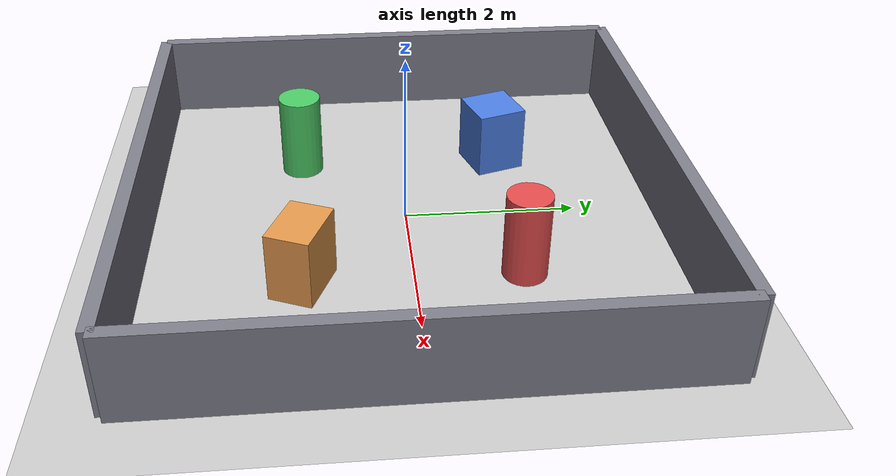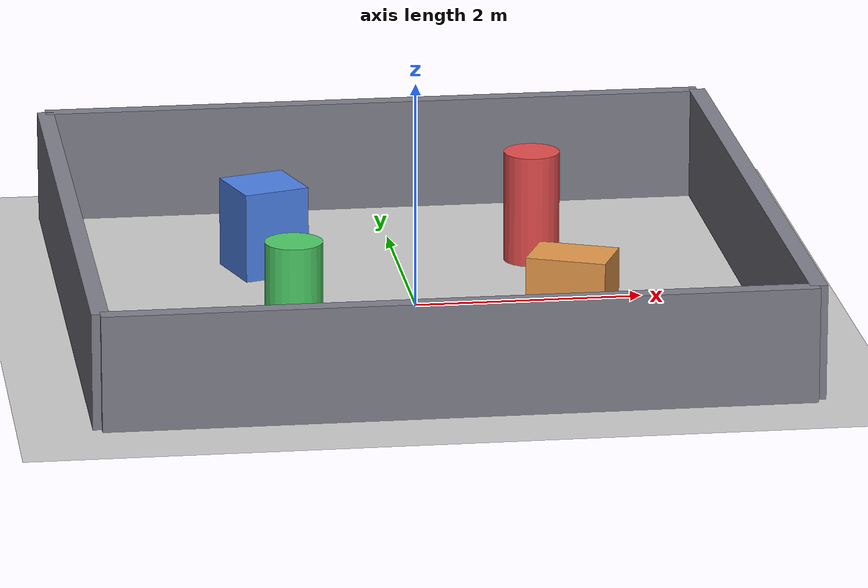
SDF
<?xml version="1.0" ?>
<sdf version="1.8">
  <world name="obstacles_world">

    <!-- Physics Configuration -->
    <physics name="1ms" type="ignored">
      <max_step_size>0.001</max_step_size>
      <real_time_factor>1.0</real_time_factor>
    </physics>

    <!-- Required Gazebo Sim Plugins -->
    <plugin
      filename="gz-sim-physics-system"
      name="gz::sim::systems::Physics">
    </plugin>
    <plugin
      filename="gz-sim-user-commands-system"
      name="gz::sim::systems::UserCommands">
    </plugin>
    <plugin
      filename="gz-sim-scene-broadcaster-system"
      name="gz::sim::systems::SceneBroadcaster">
    </plugin>
    <plugin
      filename="gz-sim-sensors-system"
      name="gz::sim::systems::Sensors">
      <render_engine>ogre2</render_engine>
    </plugin>

    <!-- Sunlight -->
    <light type="directional" name="sun">
      <cast_shadows>true</cast_shadows>
      <pose>0 0 10 0 0 0</pose>
      <diffuse>0.8 0.8 0.8 1</diffuse>
      <specular>0.2 0.2 0.2 1</specular>
      <attenuation>
        <range>1000</range>
        <constant>0.9</constant>
        <linear>0.01</linear>
        <quadratic>0.001</quadratic>
      </attenuation>
      <direction>-0.5 0.1 -0.9</direction>
    </light>

    <!-- Ground Plane -->
    <model name="ground_plane">
      <static>true</static>
      <link name="link">
        <collision name="collision">
          <geometry>
            <plane>
              <normal>0 0 1</normal>
              <size>100 100</size>
            </plane>
          </geometry>
        </collision>
        <visual name="visual">
          <geometry>
            <plane>
              <normal>0 0 1</normal>
              <size>100 100</size>
            </plane>
          </geometry>
          <material>
            <ambient>0.8 0.8 0.8 1</ambient>
            <diffuse>0.8 0.8 0.8 1</diffuse>
            <specular>0.8 0.8 0.8 1</specular>
          </material>
        </visual>
      </link>
    </model>

    <!-- Room Boundary Walls (6m x 6m Arena) -->
    <!-- North Wall -->
    <model name="wall_north">
      <static>true</static>
      <pose>0 3 0.5 0 0 0</pose>
      <link name="link">
        <collision name="collision"><geometry><box><size>6 0.15 1.0</size></box></geometry></collision>
        <visual name="visual"><geometry><box><size>6 0.15 1.0</size></box></geometry>
          <material><ambient>0.3 0.3 0.35 1</ambient><diffuse>0.5 0.5 0.55 1</diffuse></material>
        </visual>
      </link>
    </model>

    <!-- South Wall -->
    <model name="wall_south">
      <static>true</static>
      <pose>0 -3 0.5 0 0 0</pose>
      <link name="link">
        <collision name="collision"><geometry><box><size>6 0.15 1.0</size></box></geometry></collision>
        <visual name="visual"><geometry><box><size>6 0.15 1.0</size></box></geometry>
          <material><ambient>0.3 0.3 0.35 1</ambient><diffuse>0.5 0.5 0.55 1</diffuse></material>
        </visual>
      </link>
    </model>

    <!-- East Wall -->
    <model name="wall_east">
      <static>true</static>
      <pose>3 0 0.5 0 0 0</pose>
      <link name="link">
        <collision name="collision"><geometry><box><size>0.15 6 1.0</size></box></geometry></collision>
        <visual name="visual"><geometry><box><size>0.15 6 1.0</size></box></geometry>
          <material><ambient>0.3 0.3 0.35 1</ambient><diffuse>0.5 0.5 0.55 1</diffuse></material>
        </visual>
      </link>
    </model>

    <!-- West Wall -->
    <model name="wall_west">
      <static>true</static>
      <pose>-3 0 0.5 0 0 0</pose>
      <link name="link">
        <collision name="collision"><geometry><box><size>0.15 6 1.0</size></box></geometry></collision>
        <visual name="visual"><geometry><box><size>0.15 6 1.0</size></box></geometry>
          <material><ambient>0.3 0.3 0.35 1</ambient><diffuse>0.5 0.5 0.55 1</diffuse></material>
        </visual>
      </link>
    </model>

    <!-- Obstacle Pillar 1 -->
    <model name="pillar_1">
      <static>true</static>
      <pose>1.2 1.2 0.5 0 0 0</pose>
      <link name="link">
        <collision name="collision"><geometry><cylinder><radius>0.25</radius><length>1.0</length></cylinder></geometry></collision>
        <visual name="visual"><geometry><cylinder><radius>0.25</radius><length>1.0</length></cylinder></geometry>
          <material><ambient>0.8 0.2 0.2 1</ambient><diffuse>0.9 0.3 0.3 1</diffuse></material>
        </visual>
      </link>
    </model>

    <!-- Obstacle Pillar 2 -->
    <model name="pillar_2">
      <static>true</static>
      <pose>-1.2 -1.2 0.5 0 0 0</pose>
      <link name="link">
        <collision name="collision"><geometry><cylinder><radius>0.25</radius><length>1.0</length></cylinder></geometry></collision>
        <visual name="visual"><geometry><cylinder><radius>0.25</radius><length>1.0</length></cylinder></geometry>
          <material><ambient>0.2 0.7 0.3 1</ambient><diffuse>0.3 0.8 0.4 1</diffuse></material>
        </visual>
      </link>
    </model>

    <!-- Obstacle Box 1 -->
    <model name="box_1">
      <static>true</static>
      <pose>-1.2 1.2 0.4 0 0 0.3</pose>
      <link name="link">
        <collision name="collision"><geometry><box><size>0.6 0.6 0.8</size></box></geometry></collision>
        <visual name="visual"><geometry><box><size>0.6 0.6 0.8</size></box></geometry>
          <material><ambient>0.2 0.4 0.8 1</ambient><diffuse>0.3 0.5 0.9 1</diffuse></material>
        </visual>
      </link>
    </model>

    <!-- Obstacle Box 2 -->
    <model name="box_2">
      <static>true</static>
      <pose>1.2 -1.2 0.4 0 0 -0.4</pose>
      <link name="link">
        <collision name="collision"><geometry><box><size>0.7 0.5 0.8</size></box></geometry></collision>
        <visual name="visual"><geometry><box><size>0.7 0.5 0.8</size></box></geometry>
          <material><ambient>0.8 0.5 0.2 1</ambient><diffuse>0.9 0.6 0.3 1</diffuse></material>
        </visual>
      </link>
    </model>

  </world>
</sdf>
